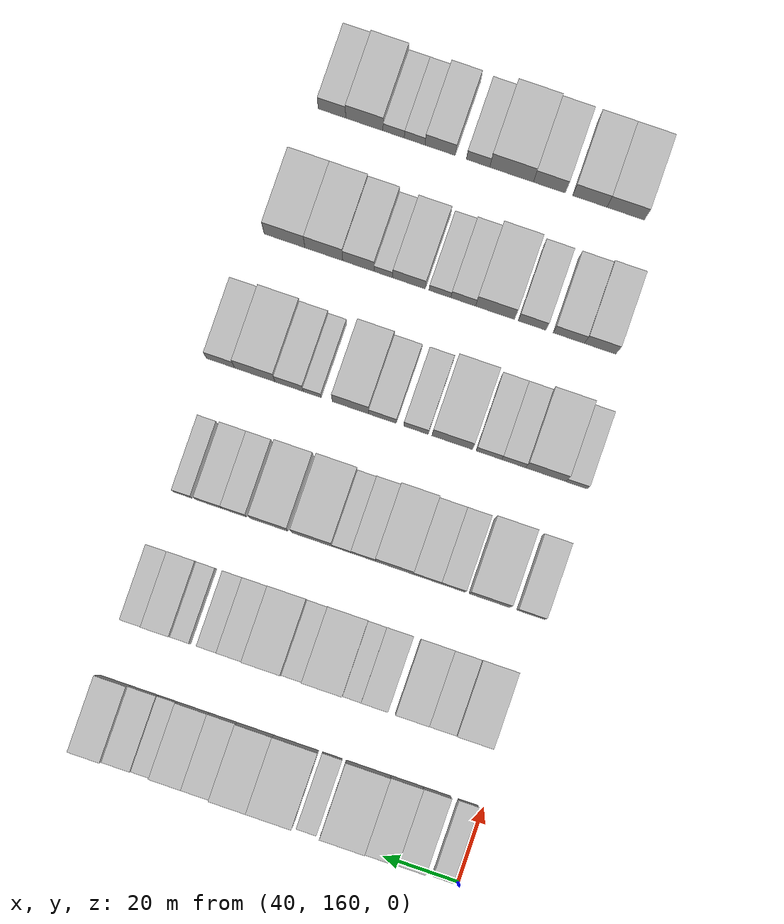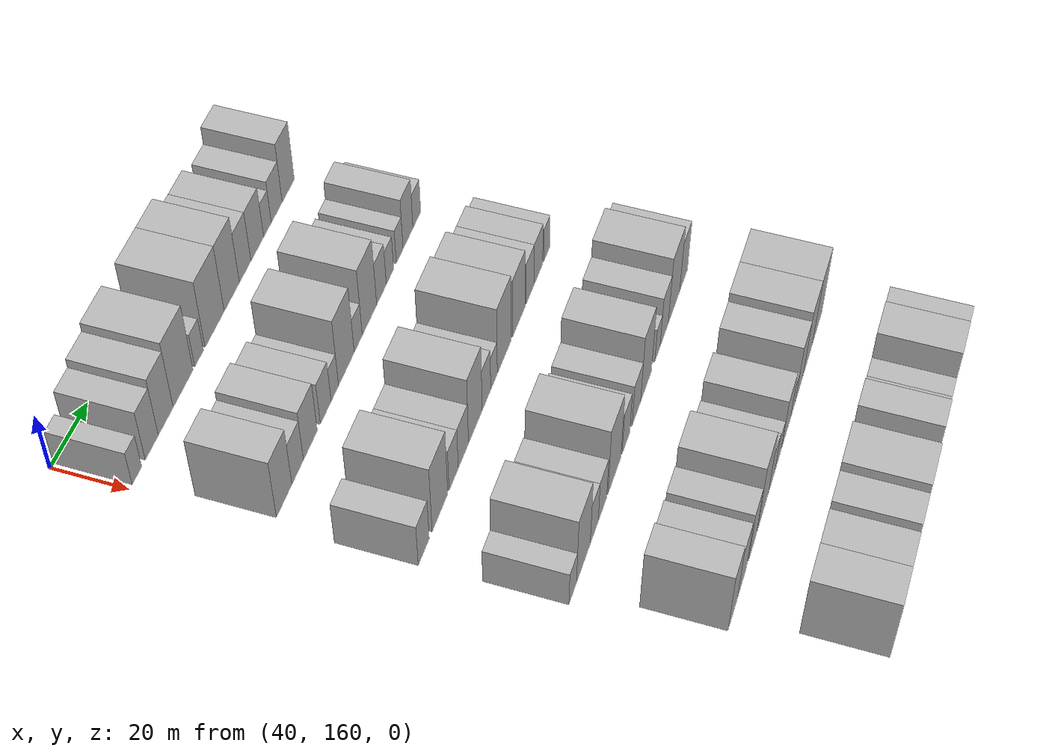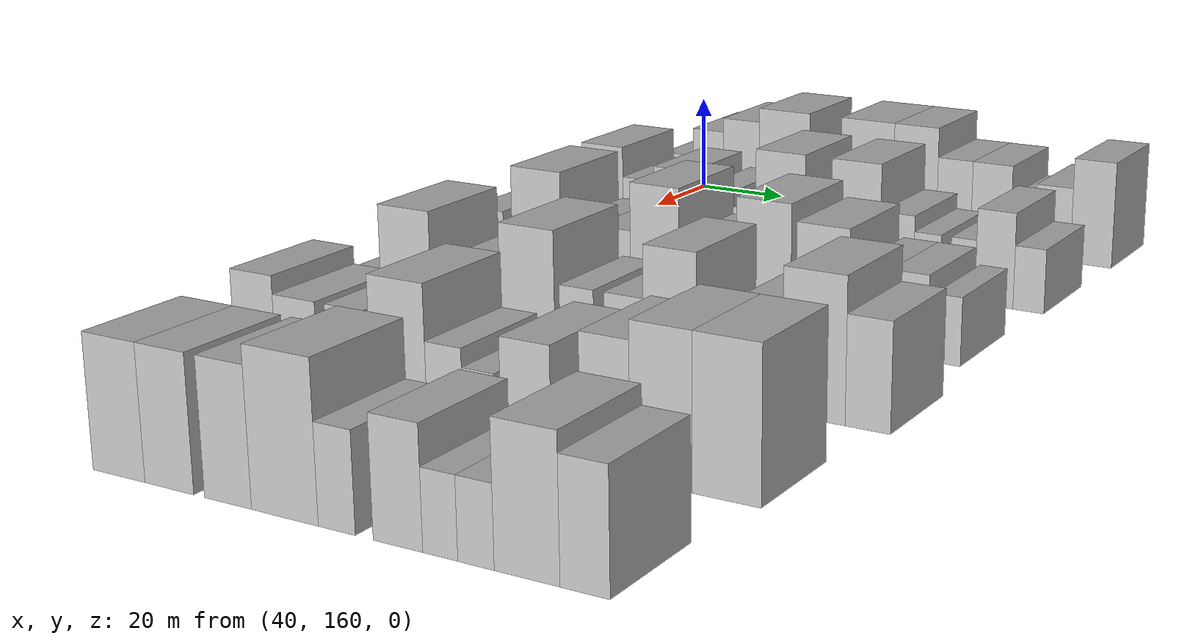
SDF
<sdf version="1.6">
 <world name="default">
  <model name="building_82">
   <static>1</static>
   <pose>50.0000 164.1801 0 0.000000 0.000000 0.000000</pose>
   <link name="link">
    <pose>0 0 6.00 0 0 0</pose>
    <collision name="collision"><geometry><box><size>20.0000 5.3030 12.0000</size></box></geometry></collision>
    <visual name="visual">
     <cast_shadows>0</cast_shadows>
     <geometry><box><size>20.0000 5.3030 12.0000</size></box></geometry>
     <material>
      <script>
       <uri>model://HANNAS_wall/materials/scripts</uri>
       <uri>model://HANNAS_wall/materials/textures</uri>
       <name>vrc/HANNAS_wall</name>
      </script>
     </material>
    </visual>
   </link>
  </model>
  <model name="building_83">
   <static>1</static>
   <pose>50.0000 172.5472 0 0.000000 0.000000 0.000000</pose>
   <link name="link">
    <pose>0 0 9.00 0 0 0</pose>
    <collision name="collision"><geometry><box><size>20.0000 7.4312 18.0000</size></box></geometry></collision>
    <visual name="visual">
     <cast_shadows>0</cast_shadows>
     <geometry><box><size>20.0000 7.4312 18.0000</size></box></geometry>
     <material>
      <script>
       <uri>model://HANNAS_wall/materials/scripts</uri>
       <uri>model://HANNAS_wall/materials/textures</uri>
       <name>vrc/HANNAS_wall</name>
      </script>
     </material>
    </visual>
   </link>
  </model>
  <model name="building_84">
   <static>1</static>
   <pose>50.0000 180.5923 0 0.000000 0.000000 0.000000</pose>
   <link name="link">
    <pose>0 0 10.50 0 0 0</pose>
    <collision name="collision"><geometry><box><size>20.0000 8.6590 21.0000</size></box></geometry></collision>
    <visual name="visual">
     <cast_shadows>0</cast_shadows>
     <geometry><box><size>20.0000 8.6590 21.0000</size></box></geometry>
     <material>
      <script>
       <uri>model://HANNAS_wall/materials/scripts</uri>
       <uri>model://HANNAS_wall/materials/textures</uri>
       <name>vrc/HANNAS_wall</name>
      </script>
     </material>
    </visual>
   </link>
  </model>
  <model name="building_85">
   <static>1</static>
   <pose>50.0000 190.8410 0 0.000000 0.000000 0.000000</pose>
   <link name="link">
    <pose>0 0 12.00 0 0 0</pose>
    <collision name="collision"><geometry><box><size>20.0000 11.8384 24.0000</size></box></geometry></collision>
    <visual name="visual">
     <cast_shadows>0</cast_shadows>
     <geometry><box><size>20.0000 11.8384 24.0000</size></box></geometry>
     <material>
      <script>
       <uri>model://HANNAS_wall/materials/scripts</uri>
       <uri>model://HANNAS_wall/materials/textures</uri>
       <name>vrc/HANNAS_wall</name>
      </script>
     </material>
    </visual>
   </link>
  </model>
  <model name="building_86">
   <static>1</static>
   <pose>50.0000 200.4289 0 0.000000 0.000000 0.000000</pose>
   <link name="link">
    <pose>0 0 6.00 0 0 0</pose>
    <collision name="collision"><geometry><box><size>20.0000 5.3373 12.0000</size></box></geometry></collision>
    <visual name="visual">
     <cast_shadows>0</cast_shadows>
     <geometry><box><size>20.0000 5.3373 12.0000</size></box></geometry>
     <material>
      <script>
       <uri>model://HANNAS_wall/materials/scripts</uri>
       <uri>model://HANNAS_wall/materials/textures</uri>
       <name>vrc/HANNAS_wall</name>
      </script>
     </material>
    </visual>
   </link>
  </model>
  <model name="building_87">
   <static>1</static>
   <pose>50.0000 210.0769 0 0.000000 0.000000 0.000000</pose>
   <link name="link">
    <pose>0 0 12.00 0 0 0</pose>
    <collision name="collision"><geometry><box><size>20.0000 11.9589 24.0000</size></box></geometry></collision>
    <visual name="visual">
     <cast_shadows>0</cast_shadows>
     <geometry><box><size>20.0000 11.9589 24.0000</size></box></geometry>
     <material>
      <script>
       <uri>model://HANNAS_wall/materials/scripts</uri>
       <uri>model://HANNAS_wall/materials/textures</uri>
       <name>vrc/HANNAS_wall</name>
      </script>
     </material>
    </visual>
   </link>
  </model>
  <model name="building_88">
   <static>1</static>
   <pose>50.0000 220.9271 0 0.000000 0.000000 0.000000</pose>
   <link name="link">
    <pose>0 0 12.00 0 0 0</pose>
    <collision name="collision"><geometry><box><size>20.0000 9.7415 24.0000</size></box></geometry></collision>
    <visual name="visual">
     <cast_shadows>0</cast_shadows>
     <geometry><box><size>20.0000 9.7415 24.0000</size></box></geometry>
     <material>
      <script>
       <uri>model://HANNAS_wall/materials/scripts</uri>
       <uri>model://HANNAS_wall/materials/textures</uri>
       <name>vrc/HANNAS_wall</name>
      </script>
     </material>
    </visual>
   </link>
  </model>
  <model name="building_89">
   <static>1</static>
   <pose>50.0000 229.5679 0 0.000000 0.000000 0.000000</pose>
   <link name="link">
    <pose>0 0 9.00 0 0 0</pose>
    <collision name="collision"><geometry><box><size>20.0000 7.5402 18.0000</size></box></geometry></collision>
    <visual name="visual">
     <cast_shadows>0</cast_shadows>
     <geometry><box><size>20.0000 7.5402 18.0000</size></box></geometry>
     <material>
      <script>
       <uri>model://HANNAS_wall/materials/scripts</uri>
       <uri>model://HANNAS_wall/materials/textures</uri>
       <name>vrc/HANNAS_wall</name>
      </script>
     </material>
    </visual>
   </link>
  </model>
  <model name="building_90">
   <static>1</static>
   <pose>50.0000 237.5758 0 0.000000 0.000000 0.000000</pose>
   <link name="link">
    <pose>0 0 9.00 0 0 0</pose>
    <collision name="collision"><geometry><box><size>20.0000 8.4756 18.0000</size></box></geometry></collision>
    <visual name="visual">
     <cast_shadows>0</cast_shadows>
     <geometry><box><size>20.0000 8.4756 18.0000</size></box></geometry>
     <material>
      <script>
       <uri>model://HANNAS_wall/materials/scripts</uri>
       <uri>model://HANNAS_wall/materials/textures</uri>
       <name>vrc/HANNAS_wall</name>
      </script>
     </material>
    </visual>
   </link>
  </model>
  <model name="building_91">
   <static>1</static>
   <pose>50.0000 244.3760 0 0.000000 0.000000 0.000000</pose>
   <link name="link">
    <pose>0 0 6.00 0 0 0</pose>
    <collision name="collision"><geometry><box><size>20.0000 5.1248 12.0000</size></box></geometry></collision>
    <visual name="visual">
     <cast_shadows>0</cast_shadows>
     <geometry><box><size>20.0000 5.1248 12.0000</size></box></geometry>
     <material>
      <script>
       <uri>model://HANNAS_wall/materials/scripts</uri>
       <uri>model://HANNAS_wall/materials/textures</uri>
       <name>vrc/HANNAS_wall</name>
      </script>
     </material>
    </visual>
   </link>
  </model>
  <model name="building_92">
   <static>1</static>
   <pose>50.0000 250.6864 0 0.000000 0.000000 0.000000</pose>
   <link name="link">
    <pose>0 0 7.50 0 0 0</pose>
    <collision name="collision"><geometry><box><size>20.0000 7.4958 15.0000</size></box></geometry></collision>
    <visual name="visual">
     <cast_shadows>0</cast_shadows>
     <geometry><box><size>20.0000 7.4958 15.0000</size></box></geometry>
     <material>
      <script>
       <uri>model://HANNAS_wall/materials/scripts</uri>
       <uri>model://HANNAS_wall/materials/textures</uri>
       <name>vrc/HANNAS_wall</name>
      </script>
     </material>
    </visual>
   </link>
  </model>
  <model name="building_93">
   <static>1</static>
   <pose>50.0000 258.6662 0 0.000000 0.000000 0.000000</pose>
   <link name="link">
    <pose>0 0 10.50 0 0 0</pose>
    <collision name="collision"><geometry><box><size>20.0000 8.4640 21.0000</size></box></geometry></collision>
    <visual name="visual">
     <cast_shadows>0</cast_shadows>
     <geometry><box><size>20.0000 8.4640 21.0000</size></box></geometry>
     <material>
      <script>
       <uri>model://HANNAS_wall/materials/scripts</uri>
       <uri>model://HANNAS_wall/materials/textures</uri>
       <name>vrc/HANNAS_wall</name>
      </script>
     </material>
    </visual>
   </link>
  </model>
  <model name="building_216">
   <static>1</static>
   <pose>85.0000 167.8943 0 0.000000 0.000000 0.000000</pose>
   <link name="link">
    <pose>0 0 10.50 0 0 0</pose>
    <collision name="collision"><geometry><box><size>20.0000 9.6177 21.0000</size></box></geometry></collision>
    <visual name="visual">
     <cast_shadows>0</cast_shadows>
     <geometry><box><size>20.0000 9.6177 21.0000</size></box></geometry>
     <material>
      <script>
       <uri>model://HANNAS_wall/materials/scripts</uri>
       <uri>model://HANNAS_wall/materials/textures</uri>
       <name>vrc/HANNAS_wall</name>
      </script>
     </material>
    </visual>
   </link>
  </model>
  <model name="building_217">
   <static>1</static>
   <pose>85.0000 176.3265 0 0.000000 0.000000 0.000000</pose>
   <link name="link">
    <pose>0 0 7.50 0 0 0</pose>
    <collision name="collision"><geometry><box><size>20.0000 7.2466 15.0000</size></box></geometry></collision>
    <visual name="visual">
     <cast_shadows>0</cast_shadows>
     <geometry><box><size>20.0000 7.2466 15.0000</size></box></geometry>
     <material>
      <script>
       <uri>model://HANNAS_wall/materials/scripts</uri>
       <uri>model://HANNAS_wall/materials/textures</uri>
       <name>vrc/HANNAS_wall</name>
      </script>
     </material>
    </visual>
   </link>
  </model>
  <model name="building_218">
   <static>1</static>
   <pose>85.0000 184.3999 0 0.000000 0.000000 0.000000</pose>
   <link name="link">
    <pose>0 0 9.00 0 0 0</pose>
    <collision name="collision"><geometry><box><size>20.0000 8.9003 18.0000</size></box></geometry></collision>
    <visual name="visual">
     <cast_shadows>0</cast_shadows>
     <geometry><box><size>20.0000 8.9003 18.0000</size></box></geometry>
     <material>
      <script>
       <uri>model://HANNAS_wall/materials/scripts</uri>
       <uri>model://HANNAS_wall/materials/textures</uri>
       <name>vrc/HANNAS_wall</name>
      </script>
     </material>
    </visual>
   </link>
  </model>
  <model name="building_219">
   <static>1</static>
   <pose>85.0000 194.3964 0 0.000000 0.000000 0.000000</pose>
   <link name="link">
    <pose>0 0 7.50 0 0 0</pose>
    <collision name="collision"><geometry><box><size>20.0000 7.0926 15.0000</size></box></geometry></collision>
    <visual name="visual">
     <cast_shadows>0</cast_shadows>
     <geometry><box><size>20.0000 7.0926 15.0000</size></box></geometry>
     <material>
      <script>
       <uri>model://HANNAS_wall/materials/scripts</uri>
       <uri>model://HANNAS_wall/materials/textures</uri>
       <name>vrc/HANNAS_wall</name>
      </script>
     </material>
    </visual>
   </link>
  </model>
  <model name="building_220">
   <static>1</static>
   <pose>85.0000 200.4148 0 0.000000 0.000000 0.000000</pose>
   <link name="link">
    <pose>0 0 6.00 0 0 0</pose>
    <collision name="collision"><geometry><box><size>20.0000 4.9443 12.0000</size></box></geometry></collision>
    <visual name="visual">
     <cast_shadows>0</cast_shadows>
     <geometry><box><size>20.0000 4.9443 12.0000</size></box></geometry>
     <material>
      <script>
       <uri>model://HANNAS_wall/materials/scripts</uri>
       <uri>model://HANNAS_wall/materials/textures</uri>
       <name>vrc/HANNAS_wall</name>
      </script>
     </material>
    </visual>
   </link>
  </model>
  <model name="building_221">
   <static>1</static>
   <pose>85.0000 208.2354 0 0.000000 0.000000 0.000000</pose>
   <link name="link">
    <pose>0 0 12.00 0 0 0</pose>
    <collision name="collision"><geometry><box><size>20.0000 10.6969 24.0000</size></box></geometry></collision>
    <visual name="visual">
     <cast_shadows>0</cast_shadows>
     <geometry><box><size>20.0000 10.6969 24.0000</size></box></geometry>
     <material>
      <script>
       <uri>model://HANNAS_wall/materials/scripts</uri>
       <uri>model://HANNAS_wall/materials/textures</uri>
       <name>vrc/HANNAS_wall</name>
      </script>
     </material>
    </visual>
   </link>
  </model>
  <model name="building_222">
   <static>1</static>
   <pose>85.0000 216.3691 0 0.000000 0.000000 0.000000</pose>
   <link name="link">
    <pose>0 0 6.00 0 0 0</pose>
    <collision name="collision"><geometry><box><size>20.0000 5.5704 12.0000</size></box></geometry></collision>
    <visual name="visual">
     <cast_shadows>0</cast_shadows>
     <geometry><box><size>20.0000 5.5704 12.0000</size></box></geometry>
     <material>
      <script>
       <uri>model://HANNAS_wall/materials/scripts</uri>
       <uri>model://HANNAS_wall/materials/textures</uri>
       <name>vrc/HANNAS_wall</name>
      </script>
     </material>
    </visual>
   </link>
  </model>
  <model name="building_223">
   <static>1</static>
   <pose>85.0000 224.2642 0 0.000000 0.000000 0.000000</pose>
   <link name="link">
    <pose>0 0 12.00 0 0 0</pose>
    <collision name="collision"><geometry><box><size>20.0000 10.2199 24.0000</size></box></geometry></collision>
    <visual name="visual">
     <cast_shadows>0</cast_shadows>
     <geometry><box><size>20.0000 10.2199 24.0000</size></box></geometry>
     <material>
      <script>
       <uri>model://HANNAS_wall/materials/scripts</uri>
       <uri>model://HANNAS_wall/materials/textures</uri>
       <name>vrc/HANNAS_wall</name>
      </script>
     </material>
    </visual>
   </link>
  </model>
  <model name="building_224">
   <static>1</static>
   <pose>85.0000 232.8447 0 0.000000 0.000000 0.000000</pose>
   <link name="link">
    <pose>0 0 7.50 0 0 0</pose>
    <collision name="collision"><geometry><box><size>20.0000 6.9410 15.0000</size></box></geometry></collision>
    <visual name="visual">
     <cast_shadows>0</cast_shadows>
     <geometry><box><size>20.0000 6.9410 15.0000</size></box></geometry>
     <material>
      <script>
       <uri>model://HANNAS_wall/materials/scripts</uri>
       <uri>model://HANNAS_wall/materials/textures</uri>
       <name>vrc/HANNAS_wall</name>
      </script>
     </material>
    </visual>
   </link>
  </model>
  <model name="building_225">
   <static>1</static>
   <pose>85.0000 239.0007 0 0.000000 0.000000 0.000000</pose>
   <link name="link">
    <pose>0 0 6.00 0 0 0</pose>
    <collision name="collision"><geometry><box><size>20.0000 5.3710 12.0000</size></box></geometry></collision>
    <visual name="visual">
     <cast_shadows>0</cast_shadows>
     <geometry><box><size>20.0000 5.3710 12.0000</size></box></geometry>
     <material>
      <script>
       <uri>model://HANNAS_wall/materials/scripts</uri>
       <uri>model://HANNAS_wall/materials/textures</uri>
       <name>vrc/HANNAS_wall</name>
      </script>
     </material>
    </visual>
   </link>
  </model>
  <model name="building_226">
   <static>1</static>
   <pose>85.0000 246.1801 0 0.000000 0.000000 0.000000</pose>
   <link name="link">
    <pose>0 0 6.00 0 0 0</pose>
    <collision name="collision"><geometry><box><size>20.0000 4.9880 12.0000</size></box></geometry></collision>
    <visual name="visual">
     <cast_shadows>0</cast_shadows>
     <geometry><box><size>20.0000 4.9880 12.0000</size></box></geometry>
     <material>
      <script>
       <uri>model://HANNAS_wall/materials/scripts</uri>
       <uri>model://HANNAS_wall/materials/textures</uri>
       <name>vrc/HANNAS_wall</name>
      </script>
     </material>
    </visual>
   </link>
  </model>
  <model name="building_227">
   <static>1</static>
   <pose>85.0000 252.4040 0 0.000000 0.000000 0.000000</pose>
   <link name="link">
    <pose>0 0 9.00 0 0 0</pose>
    <collision name="collision"><geometry><box><size>20.0000 7.4597 18.0000</size></box></geometry></collision>
    <visual name="visual">
     <cast_shadows>0</cast_shadows>
     <geometry><box><size>20.0000 7.4597 18.0000</size></box></geometry>
     <material>
      <script>
       <uri>model://HANNAS_wall/materials/scripts</uri>
       <uri>model://HANNAS_wall/materials/textures</uri>
       <name>vrc/HANNAS_wall</name>
      </script>
     </material>
    </visual>
   </link>
  </model>
  <model name="building_228">
   <static>1</static>
   <pose>85.0000 259.1139 0 0.000000 0.000000 0.000000</pose>
   <link name="link">
    <pose>0 0 6.00 0 0 0</pose>
    <collision name="collision"><geometry><box><size>20.0000 5.9602 12.0000</size></box></geometry></collision>
    <visual name="visual">
     <cast_shadows>0</cast_shadows>
     <geometry><box><size>20.0000 5.9602 12.0000</size></box></geometry>
     <material>
      <script>
       <uri>model://HANNAS_wall/materials/scripts</uri>
       <uri>model://HANNAS_wall/materials/textures</uri>
       <name>vrc/HANNAS_wall</name>
      </script>
     </material>
    </visual>
   </link>
  </model>
  <model name="building_347">
   <static>1</static>
   <pose>120.0000 164.4310 0 0.000000 0.000000 0.000000</pose>
   <link name="link">
    <pose>0 0 7.50 0 0 0</pose>
    <collision name="collision"><geometry><box><size>20.0000 7.4614 15.0000</size></box></geometry></collision>
    <visual name="visual">
     <cast_shadows>0</cast_shadows>
     <geometry><box><size>20.0000 7.4614 15.0000</size></box></geometry>
     <material>
      <script>
       <uri>model://HANNAS_wall/materials/scripts</uri>
       <uri>model://HANNAS_wall/materials/textures</uri>
       <name>vrc/HANNAS_wall</name>
      </script>
     </material>
    </visual>
   </link>
  </model>
  <model name="building_348">
   <static>1</static>
   <pose>120.0000 175.5983 0 0.000000 0.000000 0.000000</pose>
   <link name="link">
    <pose>0 0 12.00 0 0 0</pose>
    <collision name="collision"><geometry><box><size>20.0000 10.8732 24.0000</size></box></geometry></collision>
    <visual name="visual">
     <cast_shadows>0</cast_shadows>
     <geometry><box><size>20.0000 10.8732 24.0000</size></box></geometry>
     <material>
      <script>
       <uri>model://HANNAS_wall/materials/scripts</uri>
       <uri>model://HANNAS_wall/materials/textures</uri>
       <name>vrc/HANNAS_wall</name>
      </script>
     </material>
    </visual>
   </link>
  </model>
  <model name="building_349">
   <static>1</static>
   <pose>120.0000 185.2990 0 0.000000 0.000000 0.000000</pose>
   <link name="link">
    <pose>0 0 7.50 0 0 0</pose>
    <collision name="collision"><geometry><box><size>20.0000 6.5282 15.0000</size></box></geometry></collision>
    <visual name="visual">
     <cast_shadows>0</cast_shadows>
     <geometry><box><size>20.0000 6.5282 15.0000</size></box></geometry>
     <material>
      <script>
       <uri>model://HANNAS_wall/materials/scripts</uri>
       <uri>model://HANNAS_wall/materials/textures</uri>
       <name>vrc/HANNAS_wall</name>
      </script>
     </material>
    </visual>
   </link>
  </model>
  <model name="building_350">
   <static>1</static>
   <pose>120.0000 192.2980 0 0.000000 0.000000 0.000000</pose>
   <link name="link">
    <pose>0 0 7.50 0 0 0</pose>
    <collision name="collision"><geometry><box><size>20.0000 7.4699 15.0000</size></box></geometry></collision>
    <visual name="visual">
     <cast_shadows>0</cast_shadows>
     <geometry><box><size>20.0000 7.4699 15.0000</size></box></geometry>
     <material>
      <script>
       <uri>model://HANNAS_wall/materials/scripts</uri>
       <uri>model://HANNAS_wall/materials/textures</uri>
       <name>vrc/HANNAS_wall</name>
      </script>
     </material>
    </visual>
   </link>
  </model>
  <model name="building_351">
   <static>1</static>
   <pose>120.0000 201.1207 0 0.000000 0.000000 0.000000</pose>
   <link name="link">
    <pose>0 0 12.00 0 0 0</pose>
    <collision name="collision"><geometry><box><size>20.0000 10.1754 24.0000</size></box></geometry></collision>
    <visual name="visual">
     <cast_shadows>0</cast_shadows>
     <geometry><box><size>20.0000 10.1754 24.0000</size></box></geometry>
     <material>
      <script>
       <uri>model://HANNAS_wall/materials/scripts</uri>
       <uri>model://HANNAS_wall/materials/textures</uri>
       <name>vrc/HANNAS_wall</name>
      </script>
     </material>
    </visual>
   </link>
  </model>
  <model name="building_352">
   <static>1</static>
   <pose>120.0000 209.4607 0 0.000000 0.000000 0.000000</pose>
   <link name="link">
    <pose>0 0 7.50 0 0 0</pose>
    <collision name="collision"><geometry><box><size>20.0000 6.5045 15.0000</size></box></geometry></collision>
    <visual name="visual">
     <cast_shadows>0</cast_shadows>
     <geometry><box><size>20.0000 6.5045 15.0000</size></box></geometry>
     <material>
      <script>
       <uri>model://HANNAS_wall/materials/scripts</uri>
       <uri>model://HANNAS_wall/materials/textures</uri>
       <name>vrc/HANNAS_wall</name>
      </script>
     </material>
    </visual>
   </link>
  </model>
  <model name="building_353">
   <static>1</static>
   <pose>120.0000 215.2631 0 0.000000 0.000000 0.000000</pose>
   <link name="link">
    <pose>0 0 6.00 0 0 0</pose>
    <collision name="collision"><geometry><box><size>20.0000 5.1003 12.0000</size></box></geometry></collision>
    <visual name="visual">
     <cast_shadows>0</cast_shadows>
     <geometry><box><size>20.0000 5.1003 12.0000</size></box></geometry>
     <material>
      <script>
       <uri>model://HANNAS_wall/materials/scripts</uri>
       <uri>model://HANNAS_wall/materials/textures</uri>
       <name>vrc/HANNAS_wall</name>
      </script>
     </material>
    </visual>
   </link>
  </model>
  <model name="building_354">
   <static>1</static>
   <pose>120.0000 223.2253 0 0.000000 0.000000 0.000000</pose>
   <link name="link">
    <pose>0 0 12.00 0 0 0</pose>
    <collision name="collision"><geometry><box><size>20.0000 10.8241 24.0000</size></box></geometry></collision>
    <visual name="visual">
     <cast_shadows>0</cast_shadows>
     <geometry><box><size>20.0000 10.8241 24.0000</size></box></geometry>
     <material>
      <script>
       <uri>model://HANNAS_wall/materials/scripts</uri>
       <uri>model://HANNAS_wall/materials/textures</uri>
       <name>vrc/HANNAS_wall</name>
      </script>
     </material>
    </visual>
   </link>
  </model>
  <model name="building_355">
   <static>1</static>
   <pose>120.0000 234.7080 0 0.000000 0.000000 0.000000</pose>
   <link name="link">
    <pose>0 0 10.50 0 0 0</pose>
    <collision name="collision"><geometry><box><size>20.0000 10.1412 21.0000</size></box></geometry></collision>
    <visual name="visual">
     <cast_shadows>0</cast_shadows>
     <geometry><box><size>20.0000 10.1412 21.0000</size></box></geometry>
     <material>
      <script>
       <uri>model://HANNAS_wall/materials/scripts</uri>
       <uri>model://HANNAS_wall/materials/textures</uri>
       <name>vrc/HANNAS_wall</name>
      </script>
     </material>
    </visual>
   </link>
  </model>
  <model name="building_356">
   <static>1</static>
   <pose>120.0000 244.0949 0 0.000000 0.000000 0.000000</pose>
   <link name="link">
    <pose>0 0 7.50 0 0 0</pose>
    <collision name="collision"><geometry><box><size>20.0000 6.6326 15.0000</size></box></geometry></collision>
    <visual name="visual">
     <cast_shadows>0</cast_shadows>
     <geometry><box><size>20.0000 6.6326 15.0000</size></box></geometry>
     <material>
      <script>
       <uri>model://HANNAS_wall/materials/scripts</uri>
       <uri>model://HANNAS_wall/materials/textures</uri>
       <name>vrc/HANNAS_wall</name>
      </script>
     </material>
    </visual>
   </link>
  </model>
  <model name="building_357">
   <static>1</static>
   <pose>120.0000 250.9587 0 0.000000 0.000000 0.000000</pose>
   <link name="link">
    <pose>0 0 7.50 0 0 0</pose>
    <collision name="collision"><geometry><box><size>20.0000 7.0950 15.0000</size></box></geometry></collision>
    <visual name="visual">
     <cast_shadows>0</cast_shadows>
     <geometry><box><size>20.0000 7.0950 15.0000</size></box></geometry>
     <material>
      <script>
       <uri>model://HANNAS_wall/materials/scripts</uri>
       <uri>model://HANNAS_wall/materials/textures</uri>
       <name>vrc/HANNAS_wall</name>
      </script>
     </material>
    </visual>
   </link>
  </model>
  <model name="building_358">
   <static>1</static>
   <pose>120.0000 257.9918 0 0.000000 0.000000 0.000000</pose>
   <link name="link">
    <pose>0 0 6.00 0 0 0</pose>
    <collision name="collision"><geometry><box><size>20.0000 4.9713 12.0000</size></box></geometry></collision>
    <visual name="visual">
     <cast_shadows>0</cast_shadows>
     <geometry><box><size>20.0000 4.9713 12.0000</size></box></geometry>
     <material>
      <script>
       <uri>model://HANNAS_wall/materials/scripts</uri>
       <uri>model://HANNAS_wall/materials/textures</uri>
       <name>vrc/HANNAS_wall</name>
      </script>
     </material>
    </visual>
   </link>
  </model>
  <model name="building_471">
   <static>1</static>
   <pose>155.0000 164.0401 0 0.000000 0.000000 0.000000</pose>
   <link name="link">
    <pose>0 0 6.00 0 0 0</pose>
    <collision name="collision"><geometry><box><size>20.0000 5.8551 12.0000</size></box></geometry></collision>
    <visual name="visual">
     <cast_shadows>0</cast_shadows>
     <geometry><box><size>20.0000 5.8551 12.0000</size></box></geometry>
     <material>
      <script>
       <uri>model://HANNAS_wall/materials/scripts</uri>
       <uri>model://HANNAS_wall/materials/textures</uri>
       <name>vrc/HANNAS_wall</name>
      </script>
     </material>
    </visual>
   </link>
  </model>
  <model name="building_472">
   <static>1</static>
   <pose>155.0000 172.3498 0 0.000000 0.000000 0.000000</pose>
   <link name="link">
    <pose>0 0 12.00 0 0 0</pose>
    <collision name="collision"><geometry><box><size>20.0000 10.7644 24.0000</size></box></geometry></collision>
    <visual name="visual">
     <cast_shadows>0</cast_shadows>
     <geometry><box><size>20.0000 10.7644 24.0000</size></box></geometry>
     <material>
      <script>
       <uri>model://HANNAS_wall/materials/scripts</uri>
       <uri>model://HANNAS_wall/materials/textures</uri>
       <name>vrc/HANNAS_wall</name>
      </script>
     </material>
    </visual>
   </link>
  </model>
  <model name="building_473">
   <static>1</static>
   <pose>155.0000 180.9653 0 0.000000 0.000000 0.000000</pose>
   <link name="link">
    <pose>0 0 7.50 0 0 0</pose>
    <collision name="collision"><geometry><box><size>20.0000 6.4665 15.0000</size></box></geometry></collision>
    <visual name="visual">
     <cast_shadows>0</cast_shadows>
     <geometry><box><size>20.0000 6.4665 15.0000</size></box></geometry>
     <material>
      <script>
       <uri>model://HANNAS_wall/materials/scripts</uri>
       <uri>model://HANNAS_wall/materials/textures</uri>
       <name>vrc/HANNAS_wall</name>
      </script>
     </material>
    </visual>
   </link>
  </model>
  <model name="building_474">
   <static>1</static>
   <pose>155.0000 187.6370 0 0.000000 0.000000 0.000000</pose>
   <link name="link">
    <pose>0 0 7.50 0 0 0</pose>
    <collision name="collision"><geometry><box><size>20.0000 6.8770 15.0000</size></box></geometry></collision>
    <visual name="visual">
     <cast_shadows>0</cast_shadows>
     <geometry><box><size>20.0000 6.8770 15.0000</size></box></geometry>
     <material>
      <script>
       <uri>model://HANNAS_wall/materials/scripts</uri>
       <uri>model://HANNAS_wall/materials/textures</uri>
       <name>vrc/HANNAS_wall</name>
      </script>
     </material>
    </visual>
   </link>
  </model>
  <model name="building_475">
   <static>1</static>
   <pose>155.0000 197.5221 0 0.000000 0.000000 0.000000</pose>
   <link name="link">
    <pose>0 0 12.00 0 0 0</pose>
    <collision name="collision"><geometry><box><size>20.0000 10.8933 24.0000</size></box></geometry></collision>
    <visual name="visual">
     <cast_shadows>0</cast_shadows>
     <geometry><box><size>20.0000 10.8933 24.0000</size></box></geometry>
     <material>
      <script>
       <uri>model://HANNAS_wall/materials/scripts</uri>
       <uri>model://HANNAS_wall/materials/textures</uri>
       <name>vrc/HANNAS_wall</name>
      </script>
     </material>
    </visual>
   </link>
  </model>
  <model name="building_476">
   <static>1</static>
   <pose>155.0000 207.2724 0 0.000000 0.000000 0.000000</pose>
   <link name="link">
    <pose>0 0 7.50 0 0 0</pose>
    <collision name="collision"><geometry><box><size>20.0000 6.6073 15.0000</size></box></geometry></collision>
    <visual name="visual">
     <cast_shadows>0</cast_shadows>
     <geometry><box><size>20.0000 6.6073 15.0000</size></box></geometry>
     <material>
      <script>
       <uri>model://HANNAS_wall/materials/scripts</uri>
       <uri>model://HANNAS_wall/materials/textures</uri>
       <name>vrc/HANNAS_wall</name>
      </script>
     </material>
    </visual>
   </link>
  </model>
  <model name="building_477">
   <static>1</static>
   <pose>155.0000 216.3102 0 0.000000 0.000000 0.000000</pose>
   <link name="link">
    <pose>0 0 7.50 0 0 0</pose>
    <collision name="collision"><geometry><box><size>20.0000 7.4683 15.0000</size></box></geometry></collision>
    <visual name="visual">
     <cast_shadows>0</cast_shadows>
     <geometry><box><size>20.0000 7.4683 15.0000</size></box></geometry>
     <material>
      <script>
       <uri>model://HANNAS_wall/materials/scripts</uri>
       <uri>model://HANNAS_wall/materials/textures</uri>
       <name>vrc/HANNAS_wall</name>
      </script>
     </material>
    </visual>
   </link>
  </model>
  <model name="building_478">
   <static>1</static>
   <pose>155.0000 224.9291 0 0.000000 0.000000 0.000000</pose>
   <link name="link">
    <pose>0 0 12.00 0 0 0</pose>
    <collision name="collision"><geometry><box><size>20.0000 9.7695 24.0000</size></box></geometry></collision>
    <visual name="visual">
     <cast_shadows>0</cast_shadows>
     <geometry><box><size>20.0000 9.7695 24.0000</size></box></geometry>
     <material>
      <script>
       <uri>model://HANNAS_wall/materials/scripts</uri>
       <uri>model://HANNAS_wall/materials/textures</uri>
       <name>vrc/HANNAS_wall</name>
      </script>
     </material>
    </visual>
   </link>
  </model>
  <model name="building_479">
   <static>1</static>
   <pose>155.0000 235.2356 0 0.000000 0.000000 0.000000</pose>
   <link name="link">
    <pose>0 0 6.00 0 0 0</pose>
    <collision name="collision"><geometry><box><size>20.0000 4.8435 12.0000</size></box></geometry></collision>
    <visual name="visual">
     <cast_shadows>0</cast_shadows>
     <geometry><box><size>20.0000 4.8435 12.0000</size></box></geometry>
     <material>
      <script>
       <uri>model://HANNAS_wall/materials/scripts</uri>
       <uri>model://HANNAS_wall/materials/textures</uri>
       <name>vrc/HANNAS_wall</name>
      </script>
     </material>
    </visual>
   </link>
  </model>
  <model name="building_480">
   <static>1</static>
   <pose>155.0000 241.4638 0 0.000000 0.000000 0.000000</pose>
   <link name="link">
    <pose>0 0 9.00 0 0 0</pose>
    <collision name="collision"><geometry><box><size>20.0000 7.6127 18.0000</size></box></geometry></collision>
    <visual name="visual">
     <cast_shadows>0</cast_shadows>
     <geometry><box><size>20.0000 7.6127 18.0000</size></box></geometry>
     <material>
      <script>
       <uri>model://HANNAS_wall/materials/scripts</uri>
       <uri>model://HANNAS_wall/materials/textures</uri>
       <name>vrc/HANNAS_wall</name>
      </script>
     </material>
    </visual>
   </link>
  </model>
  <model name="building_481">
   <static>1</static>
   <pose>155.0000 250.7012 0 0.000000 0.000000 0.000000</pose>
   <link name="link">
    <pose>0 0 12.00 0 0 0</pose>
    <collision name="collision"><geometry><box><size>20.0000 10.8622 24.0000</size></box></geometry></collision>
    <visual name="visual">
     <cast_shadows>0</cast_shadows>
     <geometry><box><size>20.0000 10.8622 24.0000</size></box></geometry>
     <material>
      <script>
       <uri>model://HANNAS_wall/materials/scripts</uri>
       <uri>model://HANNAS_wall/materials/textures</uri>
       <name>vrc/HANNAS_wall</name>
      </script>
     </material>
    </visual>
   </link>
  </model>
  <model name="building_482">
   <static>1</static>
   <pose>155.0000 259.9560 0 0.000000 0.000000 0.000000</pose>
   <link name="link">
    <pose>0 0 9.00 0 0 0</pose>
    <collision name="collision"><geometry><box><size>20.0000 7.6474 18.0000</size></box></geometry></collision>
    <visual name="visual">
     <cast_shadows>0</cast_shadows>
     <geometry><box><size>20.0000 7.6474 18.0000</size></box></geometry>
     <material>
      <script>
       <uri>model://HANNAS_wall/materials/scripts</uri>
       <uri>model://HANNAS_wall/materials/textures</uri>
       <name>vrc/HANNAS_wall</name>
      </script>
     </material>
    </visual>
   </link>
  </model>
  <model name="building_601">
   <static>1</static>
   <pose>190.0000 169.5225 0 0.000000 0.000000 0.000000</pose>
   <link name="link">
    <pose>0 0 10.50 0 0 0</pose>
    <collision name="collision"><geometry><box><size>20.0000 8.4796 21.0000</size></box></geometry></collision>
    <visual name="visual">
     <cast_shadows>0</cast_shadows>
     <geometry><box><size>20.0000 8.4796 21.0000</size></box></geometry>
     <material>
      <script>
       <uri>model://HANNAS_wall/materials/scripts</uri>
       <uri>model://HANNAS_wall/materials/textures</uri>
       <name>vrc/HANNAS_wall</name>
      </script>
     </material>
    </visual>
   </link>
  </model>
  <model name="building_602">
   <static>1</static>
   <pose>190.0000 177.9799 0 0.000000 0.000000 0.000000</pose>
   <link name="link">
    <pose>0 0 9.00 0 0 0</pose>
    <collision name="collision"><geometry><box><size>20.0000 8.4352 18.0000</size></box></geometry></collision>
    <visual name="visual">
     <cast_shadows>0</cast_shadows>
     <geometry><box><size>20.0000 8.4352 18.0000</size></box></geometry>
     <material>
      <script>
       <uri>model://HANNAS_wall/materials/scripts</uri>
       <uri>model://HANNAS_wall/materials/textures</uri>
       <name>vrc/HANNAS_wall</name>
      </script>
     </material>
    </visual>
   </link>
  </model>
  <model name="building_603">
   <static>1</static>
   <pose>190.0000 187.9290 0 0.000000 0.000000 0.000000</pose>
   <link name="link">
    <pose>0 0 9.00 0 0 0</pose>
    <collision name="collision"><geometry><box><size>20.0000 7.4630 18.0000</size></box></geometry></collision>
    <visual name="visual">
     <cast_shadows>0</cast_shadows>
     <geometry><box><size>20.0000 7.4630 18.0000</size></box></geometry>
     <material>
      <script>
       <uri>model://HANNAS_wall/materials/scripts</uri>
       <uri>model://HANNAS_wall/materials/textures</uri>
       <name>vrc/HANNAS_wall</name>
      </script>
     </material>
    </visual>
   </link>
  </model>
  <model name="building_604">
   <static>1</static>
   <pose>190.0000 197.9050 0 0.000000 0.000000 0.000000</pose>
   <link name="link">
    <pose>0 0 12.00 0 0 0</pose>
    <collision name="collision"><geometry><box><size>20.0000 10.4890 24.0000</size></box></geometry></collision>
    <visual name="visual">
     <cast_shadows>0</cast_shadows>
     <geometry><box><size>20.0000 10.4890 24.0000</size></box></geometry>
     <material>
      <script>
       <uri>model://HANNAS_wall/materials/scripts</uri>
       <uri>model://HANNAS_wall/materials/textures</uri>
       <name>vrc/HANNAS_wall</name>
      </script>
     </material>
    </visual>
   </link>
  </model>
  <model name="building_605">
   <static>1</static>
   <pose>190.0000 206.4874 0 0.000000 0.000000 0.000000</pose>
   <link name="link">
    <pose>0 0 7.50 0 0 0</pose>
    <collision name="collision"><geometry><box><size>20.0000 6.6758 15.0000</size></box></geometry></collision>
    <visual name="visual">
     <cast_shadows>0</cast_shadows>
     <geometry><box><size>20.0000 6.6758 15.0000</size></box></geometry>
     <material>
      <script>
       <uri>model://HANNAS_wall/materials/scripts</uri>
       <uri>model://HANNAS_wall/materials/textures</uri>
       <name>vrc/HANNAS_wall</name>
      </script>
     </material>
    </visual>
   </link>
  </model>
  <model name="building_606">
   <static>1</static>
   <pose>190.0000 212.7855 0 0.000000 0.000000 0.000000</pose>
   <link name="link">
    <pose>0 0 6.00 0 0 0</pose>
    <collision name="collision"><geometry><box><size>20.0000 5.9206 12.0000</size></box></geometry></collision>
    <visual name="visual">
     <cast_shadows>0</cast_shadows>
     <geometry><box><size>20.0000 5.9206 12.0000</size></box></geometry>
     <material>
      <script>
       <uri>model://HANNAS_wall/materials/scripts</uri>
       <uri>model://HANNAS_wall/materials/textures</uri>
       <name>vrc/HANNAS_wall</name>
      </script>
     </material>
    </visual>
   </link>
  </model>
  <model name="building_607">
   <static>1</static>
   <pose>190.0000 221.1743 0 0.000000 0.000000 0.000000</pose>
   <link name="link">
    <pose>0 0 9.00 0 0 0</pose>
    <collision name="collision"><geometry><box><size>20.0000 8.8571 18.0000</size></box></geometry></collision>
    <visual name="visual">
     <cast_shadows>0</cast_shadows>
     <geometry><box><size>20.0000 8.8571 18.0000</size></box></geometry>
     <material>
      <script>
       <uri>model://HANNAS_wall/materials/scripts</uri>
       <uri>model://HANNAS_wall/materials/textures</uri>
       <name>vrc/HANNAS_wall</name>
      </script>
     </material>
    </visual>
   </link>
  </model>
  <model name="building_608">
   <static>1</static>
   <pose>190.0000 228.1087 0 0.000000 0.000000 0.000000</pose>
   <link name="link">
    <pose>0 0 6.00 0 0 0</pose>
    <collision name="collision"><geometry><box><size>20.0000 5.0117 12.0000</size></box></geometry></collision>
    <visual name="visual">
     <cast_shadows>0</cast_shadows>
     <geometry><box><size>20.0000 5.0117 12.0000</size></box></geometry>
     <material>
      <script>
       <uri>model://HANNAS_wall/materials/scripts</uri>
       <uri>model://HANNAS_wall/materials/textures</uri>
       <name>vrc/HANNAS_wall</name>
      </script>
     </material>
    </visual>
   </link>
  </model>
  <model name="building_609">
   <static>1</static>
   <pose>190.0000 234.8398 0 0.000000 0.000000 0.000000</pose>
   <link name="link">
    <pose>0 0 10.50 0 0 0</pose>
    <collision name="collision"><geometry><box><size>20.0000 8.4505 21.0000</size></box></geometry></collision>
    <visual name="visual">
     <cast_shadows>0</cast_shadows>
     <geometry><box><size>20.0000 8.4505 21.0000</size></box></geometry>
     <material>
      <script>
       <uri>model://HANNAS_wall/materials/scripts</uri>
       <uri>model://HANNAS_wall/materials/textures</uri>
       <name>vrc/HANNAS_wall</name>
      </script>
     </material>
    </visual>
   </link>
  </model>
  <model name="building_610">
   <static>1</static>
   <pose>190.0000 244.1755 0 0.000000 0.000000 0.000000</pose>
   <link name="link">
    <pose>0 0 12.00 0 0 0</pose>
    <collision name="collision"><geometry><box><size>20.0000 10.2208 24.0000</size></box></geometry></collision>
    <visual name="visual">
     <cast_shadows>0</cast_shadows>
     <geometry><box><size>20.0000 10.2208 24.0000</size></box></geometry>
     <material>
      <script>
       <uri>model://HANNAS_wall/materials/scripts</uri>
       <uri>model://HANNAS_wall/materials/textures</uri>
       <name>vrc/HANNAS_wall</name>
      </script>
     </material>
    </visual>
   </link>
  </model>
  <model name="building_611">
   <static>1</static>
   <pose>190.0000 254.7922 0 0.000000 0.000000 0.000000</pose>
   <link name="link">
    <pose>0 0 12.00 0 0 0</pose>
    <collision name="collision"><geometry><box><size>20.0000 11.0127 24.0000</size></box></geometry></collision>
    <visual name="visual">
     <cast_shadows>0</cast_shadows>
     <geometry><box><size>20.0000 11.0127 24.0000</size></box></geometry>
     <material>
      <script>
       <uri>model://HANNAS_wall/materials/scripts</uri>
       <uri>model://HANNAS_wall/materials/textures</uri>
       <name>vrc/HANNAS_wall</name>
      </script>
     </material>
    </visual>
   </link>
  </model>
  <model name="building_726">
   <static>1</static>
   <pose>225.0000 174.5172 0 0.000000 0.000000 0.000000</pose>
   <link name="link">
    <pose>0 0 10.50 0 0 0</pose>
    <collision name="collision"><geometry><box><size>20.0000 10.1415 21.0000</size></box></geometry></collision>
    <visual name="visual">
     <cast_shadows>0</cast_shadows>
     <geometry><box><size>20.0000 10.1415 21.0000</size></box></geometry>
     <material>
      <script>
       <uri>model://HANNAS_wall/materials/scripts</uri>
       <uri>model://HANNAS_wall/materials/textures</uri>
       <name>vrc/HANNAS_wall</name>
      </script>
     </material>
    </visual>
   </link>
  </model>
  <model name="building_727">
   <static>1</static>
   <pose>225.0000 184.2192 0 0.000000 0.000000 0.000000</pose>
   <link name="link">
    <pose>0 0 10.50 0 0 0</pose>
    <collision name="collision"><geometry><box><size>20.0000 9.2626 21.0000</size></box></geometry></collision>
    <visual name="visual">
     <cast_shadows>0</cast_shadows>
     <geometry><box><size>20.0000 9.2626 21.0000</size></box></geometry>
     <material>
      <script>
       <uri>model://HANNAS_wall/materials/scripts</uri>
       <uri>model://HANNAS_wall/materials/textures</uri>
       <name>vrc/HANNAS_wall</name>
      </script>
     </material>
    </visual>
   </link>
  </model>
  <model name="building_728">
   <static>1</static>
   <pose>225.0000 195.1619 0 0.000000 0.000000 0.000000</pose>
   <link name="link">
    <pose>0 0 10.50 0 0 0</pose>
    <collision name="collision"><geometry><box><size>20.0000 8.6228 21.0000</size></box></geometry></collision>
    <visual name="visual">
     <cast_shadows>0</cast_shadows>
     <geometry><box><size>20.0000 8.6228 21.0000</size></box></geometry>
     <material>
      <script>
       <uri>model://HANNAS_wall/materials/scripts</uri>
       <uri>model://HANNAS_wall/materials/textures</uri>
       <name>vrc/HANNAS_wall</name>
      </script>
     </material>
    </visual>
   </link>
  </model>
  <model name="building_729">
   <static>1</static>
   <pose>225.0000 205.3713 0 0.000000 0.000000 0.000000</pose>
   <link name="link">
    <pose>0 0 12.00 0 0 0</pose>
    <collision name="collision"><geometry><box><size>20.0000 11.7961 24.0000</size></box></geometry></collision>
    <visual name="visual">
     <cast_shadows>0</cast_shadows>
     <geometry><box><size>20.0000 11.7961 24.0000</size></box></geometry>
     <material>
      <script>
       <uri>model://HANNAS_wall/materials/scripts</uri>
       <uri>model://HANNAS_wall/materials/textures</uri>
       <name>vrc/HANNAS_wall</name>
      </script>
     </material>
    </visual>
   </link>
  </model>
  <model name="building_730">
   <static>1</static>
   <pose>225.0000 214.4446 0 0.000000 0.000000 0.000000</pose>
   <link name="link">
    <pose>0 0 7.50 0 0 0</pose>
    <collision name="collision"><geometry><box><size>20.0000 6.3504 15.0000</size></box></geometry></collision>
    <visual name="visual">
     <cast_shadows>0</cast_shadows>
     <geometry><box><size>20.0000 6.3504 15.0000</size></box></geometry>
     <material>
      <script>
       <uri>model://HANNAS_wall/materials/scripts</uri>
       <uri>model://HANNAS_wall/materials/textures</uri>
       <name>vrc/HANNAS_wall</name>
      </script>
     </material>
    </visual>
   </link>
  </model>
  <model name="building_731">
   <static>1</static>
   <pose>225.0000 224.7213 0 0.000000 0.000000 0.000000</pose>
   <link name="link">
    <pose>0 0 9.00 0 0 0</pose>
    <collision name="collision"><geometry><box><size>20.0000 8.2030 18.0000</size></box></geometry></collision>
    <visual name="visual">
     <cast_shadows>0</cast_shadows>
     <geometry><box><size>20.0000 8.2030 18.0000</size></box></geometry>
     <material>
      <script>
       <uri>model://HANNAS_wall/materials/scripts</uri>
       <uri>model://HANNAS_wall/materials/textures</uri>
       <name>vrc/HANNAS_wall</name>
      </script>
     </material>
    </visual>
   </link>
  </model>
  <model name="building_732">
   <static>1</static>
   <pose>225.0000 231.6380 0 0.000000 0.000000 0.000000</pose>
   <link name="link">
    <pose>0 0 6.00 0 0 0</pose>
    <collision name="collision"><geometry><box><size>20.0000 5.6303 12.0000</size></box></geometry></collision>
    <visual name="visual">
     <cast_shadows>0</cast_shadows>
     <geometry><box><size>20.0000 5.6303 12.0000</size></box></geometry>
     <material>
      <script>
       <uri>model://HANNAS_wall/materials/scripts</uri>
       <uri>model://HANNAS_wall/materials/textures</uri>
       <name>vrc/HANNAS_wall</name>
      </script>
     </material>
    </visual>
   </link>
  </model>
  <model name="building_733">
   <static>1</static>
   <pose>225.0000 237.3334 0 0.000000 0.000000 0.000000</pose>
   <link name="link">
    <pose>0 0 6.00 0 0 0</pose>
    <collision name="collision"><geometry><box><size>20.0000 5.7605 12.0000</size></box></geometry></collision>
    <visual name="visual">
     <cast_shadows>0</cast_shadows>
     <geometry><box><size>20.0000 5.7605 12.0000</size></box></geometry>
     <material>
      <script>
       <uri>model://HANNAS_wall/materials/scripts</uri>
       <uri>model://HANNAS_wall/materials/textures</uri>
       <name>vrc/HANNAS_wall</name>
      </script>
     </material>
    </visual>
   </link>
  </model>
  <model name="building_734">
   <static>1</static>
   <pose>225.0000 245.2580 0 0.000000 0.000000 0.000000</pose>
   <link name="link">
    <pose>0 0 10.50 0 0 0</pose>
    <collision name="collision"><geometry><box><size>20.0000 10.0887 21.0000</size></box></geometry></collision>
    <visual name="visual">
     <cast_shadows>0</cast_shadows>
     <geometry><box><size>20.0000 10.0887 21.0000</size></box></geometry>
     <material>
      <script>
       <uri>model://HANNAS_wall/materials/scripts</uri>
       <uri>model://HANNAS_wall/materials/textures</uri>
       <name>vrc/HANNAS_wall</name>
      </script>
     </material>
    </visual>
   </link>
  </model>
  <model name="building_735">
   <static>1</static>
   <pose>225.0000 254.0282 0 0.000000 0.000000 0.000000</pose>
   <link name="link">
    <pose>0 0 9.00 0 0 0</pose>
    <collision name="collision"><geometry><box><size>20.0000 7.4517 18.0000</size></box></geometry></collision>
    <visual name="visual">
     <cast_shadows>0</cast_shadows>
     <geometry><box><size>20.0000 7.4517 18.0000</size></box></geometry>
     <material>
      <script>
       <uri>model://HANNAS_wall/materials/scripts</uri>
       <uri>model://HANNAS_wall/materials/textures</uri>
       <name>vrc/HANNAS_wall</name>
      </script>
     </material>
    </visual>
   </link>
  </model>
 </world>
</sdf>
